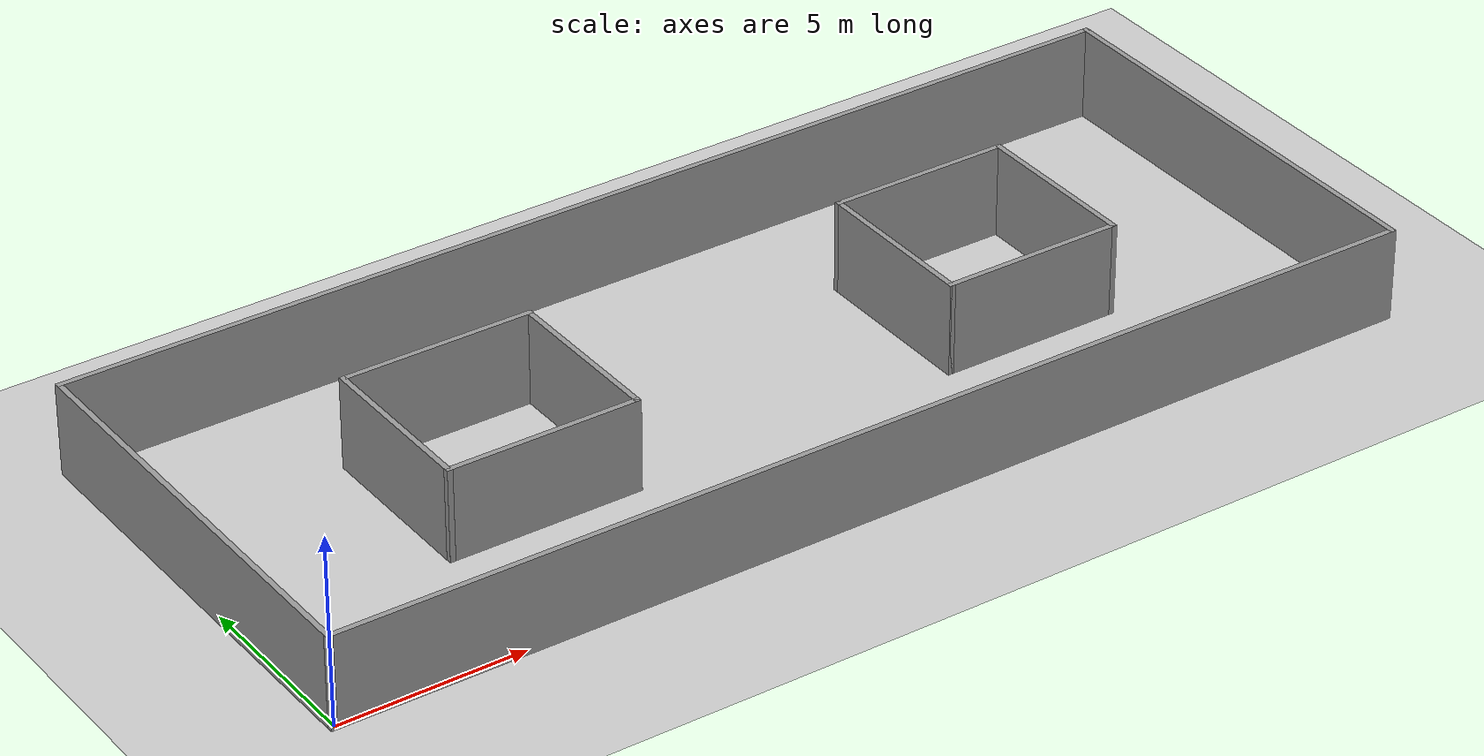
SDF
<sdf version="1.6">
 <world name="default">
  <light name="sun" type="directional">
   <pose>0 0 10 0 -0 0</pose>
   <diffuse>0.8 0.8 0.8 1</diffuse>
   <specular>0.2 0.2 0.2 1</specular>
   <attenuation>
    <range>1000</range>
    <constant>0.9</constant>
    <linear>0.01</linear>
    <quadratic>0.001</quadratic>
   </attenuation>
   <direction>-0.5 0.1 -0.9</direction>
  </light>
  <model name="ground_plane">
   <static>1</static>
   <link name="link">
    <collision name="collision">
     <geometry><plane><normal>0 0 1</normal><size>100 100</size></plane></geometry>
     <surface><friction><ode><mu>100</mu><mu2>50</mu2></ode></friction></surface>
    </collision>
    <visual name="visual">
     <cast_shadows>0</cast_shadows>
     <geometry><plane><normal>0 0 1</normal><size>100 100</size></plane></geometry>
     <material>
      <script><uri>file://media/materials/scripts/gazebo.material</uri><name>Gazebo/Grey</name></script>
     </material>
    </visual>
   </link>
  </model>
  <gravity>0 0 -9.8</gravity>
  <magnetic_field>6e-06 2.3e-05 -4.2e-05</magnetic_field>
  <atmosphere type="adiabatic"/>
  <physics name="default_physics" default="0" type="ode">
   <max_step_size>0.001</max_step_size>
   <real_time_factor>1</real_time_factor>
   <real_time_update_rate>1000</real_time_update_rate>
  </physics>
  <scene><ambient>0.4 0.4 0.4 1</ambient><background>0.7 0.7 0.7 1</background><shadows>1</shadows></scene>
  <spherical_coordinates>
   <surface_model>EARTH_WGS84</surface_model>
   <latitude_deg>0</latitude_deg>
   <longitude_deg>0</longitude_deg>
   <elevation>0</elevation>
   <heading_deg>0</heading_deg>
  </spherical_coordinates>
  <model name="testmap1">
   <pose>14.8447 5.97407 0 0 -0 0</pose>
   <link name="Wall_0">
    <collision name="Wall_0_Collision">
     <geometry><box><size>30 0.15 2.5</size></box></geometry>
     <pose>0 0 1.25 0 -0 0</pose>
    </collision>
    <visual name="Wall_0_Visual">
     <pose>0 0 1.25 0 -0 0</pose>
     <geometry><box><size>30 0.15 2.5</size></box></geometry>
     <material>
      <script><uri>file://media/materials/scripts/gazebo.material</uri><name>Gazebo/Grey</name></script>
      <ambient>1 1 1 1</ambient>
     </material>
     <meta><layer>0</layer></meta>
    </visual>
    <pose>-0.000112 6.05001 0 0 -0 0</pose>
   </link>
   <link name="Wall_1">
    <collision name="Wall_1_Collision">
     <geometry><box><size>12.25 0.15 2.5</size></box></geometry>
     <pose>0 0 1.25 0 -0 0</pose>
    </collision>
    <visual name="Wall_1_Visual">
     <pose>0 0 1.25 0 -0 0</pose>
     <geometry><box><size>12.25 0.15 2.5</size></box></geometry>
     <material>
      <script><uri>file://media/materials/scripts/gazebo.material</uri><name>Gazebo/Grey</name></script>
      <ambient>1 1 1 1</ambient>
     </material>
     <meta><layer>0</layer></meta>
    </visual>
    <pose>14.925 0 0 0 -0 -1.57078</pose>
   </link>
   <link name="Wall_11">
    <collision name="Wall_11_Collision">
     <geometry><box><size>4.75 0.15 2.5</size></box></geometry>
     <pose>0 0 1.25 0 -0 0</pose>
    </collision>
    <visual name="Wall_11_Visual">
     <pose>0 0 1.25 0 -0 0</pose>
     <geometry><box><size>4.75 0.15 2.5</size></box></geometry>
     <material>
      <script><uri>file://media/materials/scripts/gazebo.material</uri><name>Gazebo/Grey</name></script>
      <ambient>1 1 1 1</ambient>
     </material>
     <meta><layer>0</layer></meta>
    </visual>
    <pose>4.65991 0.254826 0 0 -0 -1.5708</pose>
   </link>
   <link name="Wall_12">
    <collision name="Wall_12_Collision">
     <geometry><box><size>5 0.15 2.5</size></box></geometry>
     <pose>0 0 1.25 0 -0 0</pose>
    </collision>
    <visual name="Wall_12_Visual">
     <pose>0 0 1.25 0 -0 0</pose>
     <geometry><box><size>5 0.15 2.5</size></box></geometry>
     <material>
      <script><uri>file://media/materials/scripts/gazebo.material</uri><name>Gazebo/Grey</name></script>
      <ambient>1 1 1 1</ambient>
     </material>
     <meta><layer>0</layer></meta>
    </visual>
    <pose>7.08491 -2.04517 0 0 -0 0</pose>
   </link>
   <link name="Wall_13">
    <collision name="Wall_13_Collision">
     <geometry><box><size>4.75 0.15 2.5</size></box></geometry>
     <pose>0 0 1.25 0 -0 0</pose>
    </collision>
    <visual name="Wall_13_Visual">
     <pose>0 0 1.25 0 -0 0</pose>
     <geometry><box><size>4.75 0.15 2.5</size></box></geometry>
     <material>
      <script><uri>file://media/materials/scripts/gazebo.material</uri><name>Gazebo/Grey</name></script>
      <ambient>1 1 1 1</ambient>
     </material>
     <meta><layer>0</layer></meta>
    </visual>
    <pose>9.50991 0.254826 0 0 -0 1.5708</pose>
   </link>
   <link name="Wall_14">
    <collision name="Wall_14_Collision">
     <geometry><box><size>5 0.15 2.5</size></box></geometry>
     <pose>0 0 1.25 0 -0 0</pose>
    </collision>
    <visual name="Wall_14_Visual">
     <pose>0 0 1.25 0 -0 0</pose>
     <geometry><box><size>5 0.15 2.5</size></box></geometry>
     <material>
      <script><uri>file://media/materials/scripts/gazebo.material</uri><name>Gazebo/Grey</name></script>
      <ambient>1 1 1 1</ambient>
     </material>
     <meta><layer>0</layer></meta>
    </visual>
    <pose>7.08491 2.55483 0 0 -0 3.14159</pose>
   </link>
   <link name="Wall_2">
    <collision name="Wall_2_Collision">
     <geometry><box><size>30 0.15 2.5</size></box></geometry>
     <pose>0 0 1.25 0 -0 0</pose>
    </collision>
    <visual name="Wall_2_Visual">
     <pose>0 0 1.25 0 -0 0</pose>
     <geometry><box><size>30 0.15 2.5</size></box></geometry>
     <material>
      <script><uri>file://media/materials/scripts/gazebo.material</uri><name>Gazebo/Grey</name></script>
      <ambient>1 1 1 1</ambient>
     </material>
     <meta><layer>0</layer></meta>
    </visual>
    <pose>0.000112 -6.05001 0 0 -0 3.14159</pose>
   </link>
   <link name="Wall_3">
    <collision name="Wall_3_Collision">
     <geometry><box><size>12.25 0.15 2.5</size></box></geometry>
     <pose>0 0 1.25 0 -0 0</pose>
    </collision>
    <visual name="Wall_3_Visual">
     <pose>0 0 1.25 0 -0 0</pose>
     <geometry><box><size>12.25 0.15 2.5</size></box></geometry>
     <material>
      <script><uri>file://media/materials/scripts/gazebo.material</uri><name>Gazebo/Grey</name></script>
      <ambient>1 1 1 1</ambient>
     </material>
     <meta><layer>0</layer></meta>
    </visual>
    <pose>-14.925 0 0 0 -0 1.57082</pose>
   </link>
   <link name="Wall_5">
    <collision name="Wall_5_Collision">
     <geometry><box><size>5.25 0.15 2.5</size></box></geometry>
     <pose>0 0 1.25 0 -0 0</pose>
    </collision>
    <visual name="Wall_5_Visual">
     <pose>0 0 1.25 0 -0 0</pose>
     <geometry><box><size>5.25 0.15 2.5</size></box></geometry>
     <material>
      <script><uri>file://media/materials/scripts/gazebo.material</uri><name>Gazebo/Grey</name></script>
      <ambient>1 1 1 1</ambient>
     </material>
     <meta><layer>0</layer></meta>
    </visual>
    <pose>-6.82999 2.58084 0 0 -0 0</pose>
   </link>
   <link name="Wall_7">
    <collision name="Wall_7_Collision">
     <geometry><box><size>4.75 0.15 2.5</size></box></geometry>
     <pose>0 0 1.25 0 -0 0</pose>
    </collision>
    <visual name="Wall_7_Visual">
     <pose>0 0 1.25 0 -0 0</pose>
     <geometry><box><size>4.75 0.15 2.5</size></box></geometry>
     <material>
      <script><uri>file://media/materials/scripts/gazebo.material</uri><name>Gazebo/Grey</name></script>
      <ambient>1 1 1 1</ambient>
     </material>
     <meta><layer>0</layer></meta>
    </visual>
    <pose>-4.27999 0.280839 0 0 -0 -1.5708</pose>
   </link>
   <link name="Wall_8">
    <collision name="Wall_8_Collision">
     <geometry><box><size>5.25 0.15 2.5</size></box></geometry>
     <pose>0 0 1.25 0 -0 0</pose>
    </collision>
    <visual name="Wall_8_Visual">
     <pose>0 0 1.25 0 -0 0</pose>
     <geometry><box><size>5.25 0.15 2.5</size></box></geometry>
     <material>
      <script><uri>file://media/materials/scripts/gazebo.material</uri><name>Gazebo/Grey</name></script>
      <ambient>1 1 1 1</ambient>
     </material>
     <meta><layer>0</layer></meta>
    </visual>
    <pose>-6.82999 -2.01916 0 0 -0 3.14159</pose>
   </link>
   <link name="Wall_9">
    <collision name="Wall_9_Collision">
     <geometry><box><size>4.75 0.15 2.5</size></box></geometry>
     <pose>0 0 1.25 0 -0 0</pose>
    </collision>
    <visual name="Wall_9_Visual">
     <pose>0 0 1.25 0 -0 0</pose>
     <geometry><box><size>4.75 0.15 2.5</size></box></geometry>
     <material>
      <script><uri>file://media/materials/scripts/gazebo.material</uri><name>Gazebo/Grey</name></script>
      <ambient>1 1 1 1</ambient>
     </material>
     <meta><layer>0</layer></meta>
    </visual>
    <pose>-9.37999 0.280839 0 0 -0 1.5708</pose>
   </link>
   <static>1</static>
  </model>
 </world>
</sdf>
